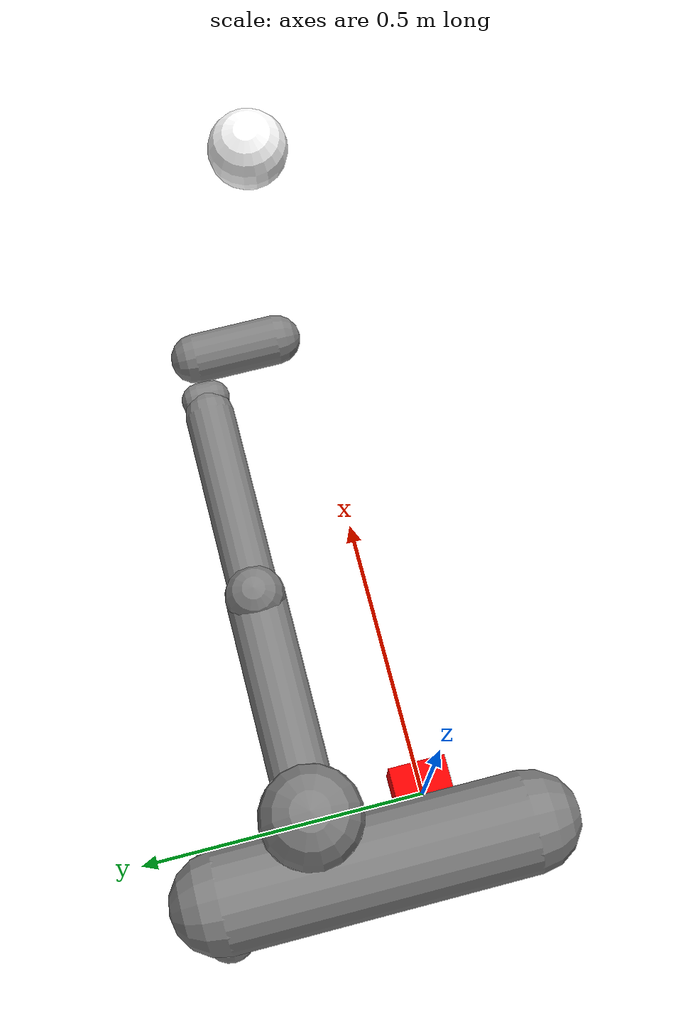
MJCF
<mujoco model="arm3d">

    <compiler inertiafromgeom="true" angle="radian" coordinate="local" />
    <option timestep="0.01" gravity="0 0 0" iterations="20" integrator="RK4" />
    <default>
        <joint limited="true" range="-3.14159 3.14159" armature="0.04" damping="1" />
        <geom friction=".5 .1 .1" margin="0.002" condim="1" contype="0" conaffinity="0" />
        <motor forcelimited="true" forcerange="-5 5"/>
    </default>

    <worldbody>
        <body name="r_shoulder_pan_link" pos="-0.1 0.2 0.1" zaxis="0 100 0">
            <geom name="e1" type="sphere" rgba="0.528 0.528 0.528 1" pos="-0.0528 0.044 0.176" size="0.044" />
            <geom name="e2" type="sphere" rgba="0.528 0.528 0.528 1" pos=" 0.0528 0.044 0.176" size="0.044" />
            <geom name="e1p" type="sphere" rgba="0.088 0.088 0.088 0.88" pos="-0.0528 0.0792 0.176" size="0.0264" />
            <geom name="e2p" type="sphere" rgba="0.088 0.088 0.088 0.88" pos=" 0.0528 0.0792 0.176" size="0.0264" />
            <geom name="sp" type="capsule" fromto="0 0 -0.352 0 0 0.176" size="0.088" />
            <joint name="r_shoulder_pan_joint" type="hinge" pos="0 0 0" axis="0 0 1" range="-2.2854 1.714602" damping="10.0" />

            <body name="r_shoulder_lift_link" pos="0.088 0 0">
                <geom name="sl" type="capsule" fromto="0 -0.088 0 0 0.088 0" size="0.088" />
                <joint name="r_shoulder_lift_joint" type="hinge" pos="0 0 0" axis="0 1 0" range="-0.5236 1.3963" damping="10.0" />

                <body name="r_upper_arm_roll_link" pos="0 0 0">
                    <geom name="uar" type="capsule" fromto="-0.088 0 0 0.088 0 0" size="0.0176" />
                    <joint name="r_upper_arm_roll_joint" type="hinge" pos="0 0 0" axis="1 0 0" range="-3.9 0.8" damping="0.1" />

                    <body name="r_upper_arm_link" pos="0 0 0">
                        <geom name="ua" type="capsule" fromto="0 0 0 0.40 0 0" size="0.0528" />

                        <body name="r_elbow_flex_link" pos="0.40 0 0">
                            <geom name="ef" type="capsule" fromto="0 -0.0176 0 0.0 0.0176 0" size="0.0528" />
                            <joint name="r_elbow_flex_joint" type="hinge" pos="0 0 0" axis="0 1 0" range="-2.3213 0" damping="1.0" />

                            <body name="r_forearm_roll_link" pos="0 0 0">
                                <geom name="fr" type="capsule" fromto="-0.088 0 0 0.088 0 0" size="0.0176" />
                                <joint name="r_forearm_roll_joint" type="hinge" limited="false" pos="0 0 0" axis="1 0 0" damping=".1" />

                                <body name="r_forearm_link" pos="0 0 0">
                                    <geom name="fa" type="capsule" fromto="0 0 0 0.35 0 0" size="0.044" />

                                    <body name="r_wrist_flex_link" pos="0.35 0 0">
                                        <geom name="wf" type="capsule" fromto="0 -0.0176 0 0 0.0176 0" size="0.0088" />
                                        <joint name="r_wrist_flex_joint" type="hinge" pos="0 0 0" axis="0 1 0" range="-2.094 0" damping=".1" />

                                        <body name="r_wrist_roll_link" pos="0 0 0">
                                            <geom name="wr" type="capsule" fromto="-0.0176 0 0 0.0176 0 0" size="0.0088" />
                                            <joint name="r_wrist_roll_joint" type="hinge" pos="0 0 0" limited="false" axis="1 0 0" damping="0.1" />

                                            <body name="r_gripper_palm_link" pos="0 0 0">
                                                <geom name="pl" type="capsule" fromto="0.03125 0 -0.0125 0.03125 0 0.0125" size="0.03125" />

                                                <body name="r_gripper_tool_frame" pos="0.1125 0 0">
                                                    <site name="leg_bottom" pos="0 0 -0.075" size="0.01" />

                                                    <body name="ball" pos="0 0 0">
                                                        <geom type="capsule" fromto="0 0 0 0 0 -0.15" size="0.045" contype="1" conaffinity="1" density="0.0001" />
                                                    </body>
                                                </body>

                                            </body>
                                        </body>
                                    </body>
                                </body>
                            </body>
                        </body>
                    </body>
                </body>
            </body>
        </body>

        <body name="object" pos="1.3 0.0 0.0">
            <geom rgba="1. 1. 1. 1" type="sphere" size="0.08 0.08 0.08" density='0.00001' contype="1" conaffinity="1"/>
            <joint name="obj_slidez" type="slide" pos="0.1 0.05 0.05" axis="0 0 1" range="-10.3213 10.3" damping="0.005"/>
            <joint name="obj_slidex" type="slide" pos="0.05 0.05 0.05" axis="1 0 0" range="-10.3213 10.3" damping="0.005"/>
            <body name="distal_10" pos="0 0 0">
                <site name="obj_pos" pos="0.025 0.025 0.025" size="0.01" />
            </body>
        </body>

        <body name="goal" pos="0 0 0">
            <geom rgba="1. 0. 0. 1" type="box" size="0.05 0.05 0.05" density='0.00001' contype="0" conaffinity="0"/>
            <site name="goal pos1" pos="0 0 0" size="0.01" />
        </body>

        <body name="distractor_1" pos="0 0 0">
            <geom rgba="1. 1. 0. 1" type="box" size="0.05 0.05 0.05" density='0.00001' contype="0" conaffinity="0"/>
            <site name="goal pos2" pos="0 0 0" size="0.01" />
        </body>

        <body name="distractor_2" pos="0 0 0">
            <geom rgba="0. 1. 0. 1" type="box" size="0.05 0.05 0.05" density='0.00001' contype="0" conaffinity="0"/>
            <site name="goal pos3" pos="0 0 0" size="0.01" />
        </body>
    </worldbody>

    <actuator>
        <motor joint="r_shoulder_pan_joint" ctrlrange="-100.0 100.0" ctrllimited="true" />
        <motor joint="r_shoulder_lift_joint" ctrlrange="-100.0 100.0" ctrllimited="true" />
        <motor joint="r_upper_arm_roll_joint" ctrlrange="-100.0 100.0" ctrllimited="true" />
        <motor joint="r_elbow_flex_joint" ctrlrange="-100.0 100.0" ctrllimited="true" />
        <motor joint="r_forearm_roll_joint" ctrlrange="-100.0 100.0" ctrllimited="true" />
        <motor joint="r_wrist_flex_joint" ctrlrange="-100.0 100.0" ctrllimited="true" />
        <motor joint="r_wrist_roll_joint" ctrlrange="-100.0 100.0" ctrllimited="true" />
    </actuator>

</mujoco>
